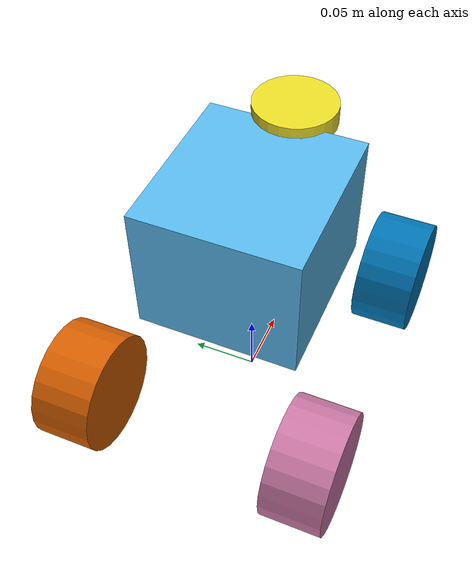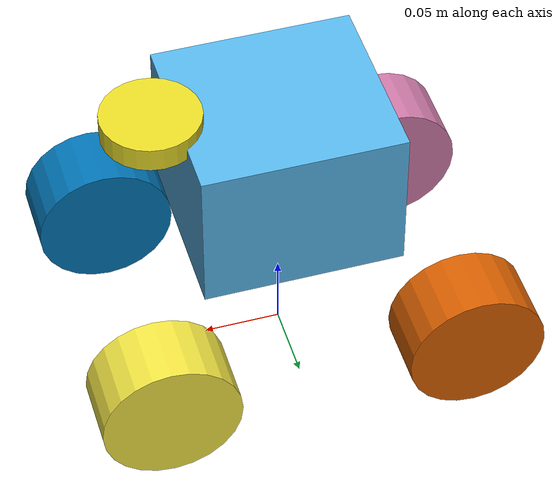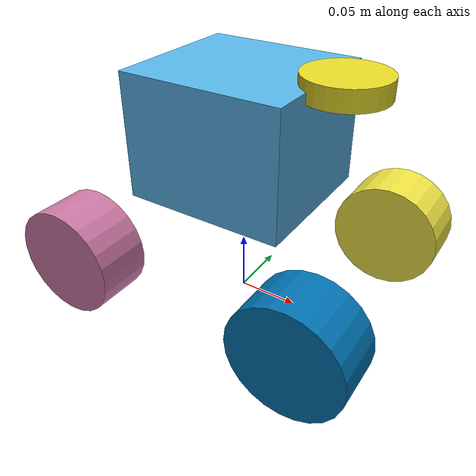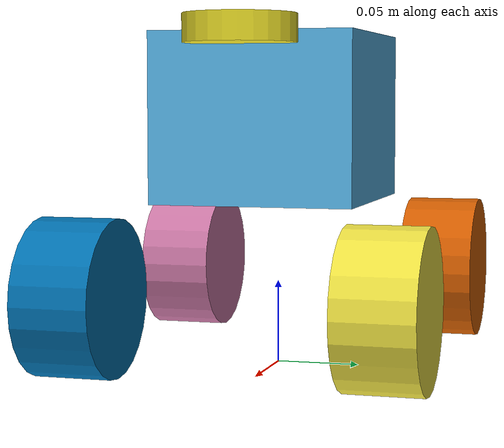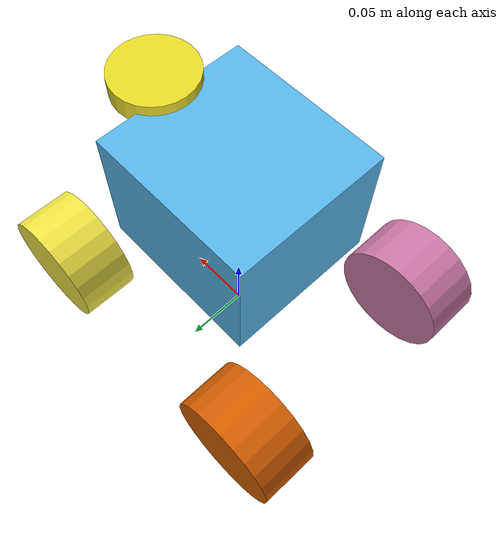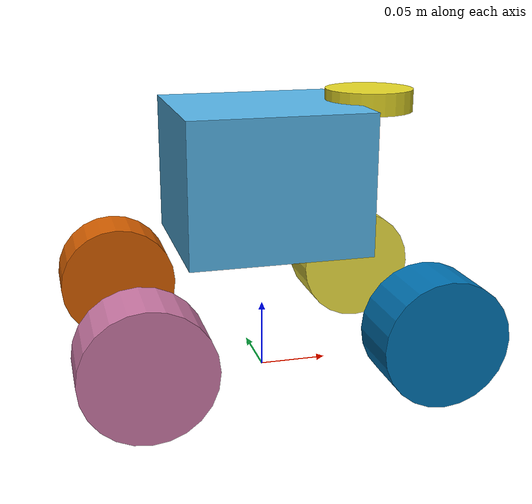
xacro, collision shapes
<?xml version="1.0"?>
<robot name="limo_four_diff" xmlns:xacro="http://ros.org/wiki/xacro">
    <xacro:include filename="$(find limo_simulation)/urdf/limo_xacro.xacro" />
    <xacro:include filename="$(find limo_simulation)/urdf/limo_four_diff.gazebo" />

    <!-- Variables -->
    <xacro:property name="M_PI" value="3.14159"/>

    <!-- Vehicle Geometries -->
    <xacro:property name="base_x_size" value="0.13" />
    <xacro:property name="base_y_size" value="0.12" />
    <xacro:property name="base_z_size" value="0.1" />

    <xacro:property name="wheelbase" value="0.2"/>
    <xacro:property name="track" value="0.13"/>
    <xacro:property name="wheel_vertical_offset" value="-0.10" />
    <xacro:property name="base_mass" value="2.1557"/>

    <xacro:property name="wheel_length" value="0.045" />
    <xacro:property name="wheel_radius" value="0.045" />

    <link name="base_footprint"/>

    <joint name="base_joint" type="fixed">
        <parent link="base_footprint"/>
        <child link="base_link"/>
        <origin xyz="0.0 0.0 0.15" rpy="0 0 0"/>
    </joint>
    <!-- Base link -->
    <link name="base_link">
        <visual>
            <origin xyz="0 0 -0.15" rpy="0 0 1.57" />
            <geometry>
                <mesh filename="file://$(find limo_simulation)/meshes/limo_base_decimated.dae" scale="1 1 1"/>
            </geometry>
        </visual>
        <collision>
            <!--origin xyz="0 0 -0.15" rpy="0 0 1.57" /-->
            <origin xyz="0 0 0" rpy="0 0 0" />
            <geometry>
                <box size="${base_x_size} ${base_y_size} ${base_z_size}"/>
            </geometry>
        </collision>
    </link>

    <link name="inertial_link">
        <inertial>
            <origin xyz="0.0 0.0 0.0" />
            <mass value="${base_mass}" />
            <inertia
                ixx="0.24" ixy="0" ixz="0"
                iyy="0.96" iyz="0"
                izz="0.96" />
        </inertial>
    </link>

    <joint name="inertial_joint" type="fixed">
        <origin xyz="0 0 0" rpy="0 0 0" />
        <parent link="base_link" />
        <child link="inertial_link" />
    </joint>

    <xacro:limo_wheel parent_prefix="base_link" wheel_prefix="front_left" reflect="1">
        <origin xyz="${wheelbase/2} ${track/2} ${wheel_vertical_offset}" rpy="0 0 0" />
    </xacro:limo_wheel>

    <xacro:limo_wheel parent_prefix="base_link" wheel_prefix="front_right" reflect="-1">
        <origin xyz="${wheelbase/2} ${-track/2} ${wheel_vertical_offset}" rpy="${M_PI} 0 0" />
    </xacro:limo_wheel>

    <xacro:limo_wheel parent_prefix="base_link" wheel_prefix="rear_left" reflect="1">
        <origin xyz="${-wheelbase/2} ${track/2} ${wheel_vertical_offset}" rpy="0 0 0" />
    </xacro:limo_wheel>

    <xacro:limo_wheel parent_prefix="base_link" wheel_prefix="rear_right" reflect="-1">
        <origin xyz="${-wheelbase/2} ${-track/2} ${wheel_vertical_offset}" rpy="${M_PI} 0 0" />
    </xacro:limo_wheel>

    <xacro:limo_laser parent_prefix="base_link" frame_prefix="laser">
        <origin xyz="0.08 0 0.05" rpy="0 0 0"/> <!-- Adjust position/orientation as needed -->
    </xacro:limo_laser>

</robot>

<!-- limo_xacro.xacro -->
<robot name="limo_xacro" xmlns:xacro="http://ros.org/wiki/xacro">
    <xacro:macro name="limo_wheel" params="parent_prefix wheel_prefix reflect *joint_pose">
        <link name="${wheel_prefix}_wheel_link">
            <inertial>
                <origin xyz="0 0 0" />
                <mass value="0.5" />
                <inertia ixx="0.01055" ixy="0" ixz="0" iyy="0.00075" iyz="0" izz="0.01055" />
            </inertial>
            <visual>
                <origin xyz="0 0 0" rpy="0 0 0" />
                <geometry>
                    <mesh filename="file://$(find limo_simulation)/meshes/limo_wheel.dae"/>
                </geometry>
            </visual>
            <collision>
              <origin xyz="0 ${wheel_length/2} 0" rpy="1.57 0 0" />
              <geometry>
                  <cylinder length="${wheel_length}" radius="${wheel_radius}" />
              </geometry>
            </collision>
        </link>

        <joint name="${wheel_prefix}_wheel" type="continuous">
            <parent link="${parent_prefix}"/>
            <child link="${wheel_prefix}_wheel_link"/>
            <xacro:insert_block name="joint_pose"/>
            <axis xyz="0 ${reflect*1} 0"/>
        </joint>

        <gazebo reference="${wheel_prefix}_wheel_link">
            <mu>0.2</mu>
            <mu2>0.2</mu2>
            <fdir1>0 ${reflect*1} 0</fdir1>
        </gazebo>
    </xacro:macro>

    <xacro:macro name="limo_laser" params="parent_prefix frame_prefix *joint_pose">
        <link name='${frame_prefix}_link'>
            <pose>0 0 0 0 0 0</pose>
            <inertial>
                <mass value="0.1"/>
                <origin xyz="0.0 0 0" rpy="0 0 0"/>
                <inertia
                    ixx="1e-6" ixy="0" ixz="0"
                    iyy="1e-6" iyz="0"
                    izz="1e-6"
                />
            </inertial>
            <visual name='laser_visual'>
                <origin xyz="0 0 0" rpy="0 0 0"/>
                <geometry>
                    <cylinder radius="0.02" length="0.01"/>
                </geometry>
                <material name='laser_material'>
                    <ambient>0.1 0.1 0.1 1</ambient>
                    <diffuse>0.1 0.1 0.2 1</diffuse>
                    <specular>0 0 0 0</specular>
                    <emissive>0 0 0 1</emissive>
                </material>
            </visual>
            <collision name='laser_collision'>
                <origin xyz="0 0 0" rpy="0 0 0"/>
                <geometry>
                    <cylinder radius="0.032" length="0.016"/>
                </geometry>
            </collision>
        </link>
        <joint type="fixed" name="laser_joint">
            <xacro:insert_block name="joint_pose"/>
            <child link="${frame_prefix}_link"/>
            <parent link="${parent_prefix}"/>
        </joint>
        <gazebo reference="${frame_prefix}_link">
            <material>Gazebo/Yellow</material>

            <sensor name="${frame_prefix}_laser" type="gpu_lidar">
                <topic>/world/empty_world/model/limobot/scan</topic>  <pose>0 0 0 0 0 0</pose>
                <update_rate>10</update_rate>
                <ray>
                    <scan>
                        <horizontal>
                            <samples>640</samples>
                            <resolution>1</resolution>
                            <min_angle>-1.396263</min_angle>
                            <max_angle>1.396263</max_angle>
                        </horizontal>
                        <vertical>
                            <samples>1</samples>
                            <resolution>0.01</resolution>
                            <min_angle>0</min_angle>
                            <max_angle>0</max_angle>
                        </vertical>
                    </scan>
                    <range>
                        <min>0.08</min>
                        <max>10.0</max>
                        <resolution>0.01</resolution>
                    </range>
                </ray>
                <always_on>1</always_on>
                <visualize>true</visualize>
            </sensor>
        </gazebo>
    </xacro:macro>

    <xacro:macro name="limo_depth_camera" params="parent_prefix frame_prefix *joint_pose">
        <link name='${frame_prefix}_link'>
            <pose>0 0 0 0 0 0</pose>
            <inertial>
                <mass value="0.1"/>
                <origin xyz="0.0 0 0" rpy="0 0 0"/>
                <inertia
                    ixx="1e-6" ixy="0" ixz="0"
                    iyy="1e-6" iyz="0"
                    izz="1e-6"
                />
            </inertial>
            <visual name='depth_camera_visual'>
                <origin xyz="0 0 0" rpy="0 0 0"/>
                <geometry>
                    <box size="0.02 0.06 0.015"/>
                </geometry>
                <material name='depth_camera_material'>
                    <ambient>0.1 0.1 0.1 1</ambient>
                    <diffuse>0.1 0.1 0.2 1</diffuse>
                    <specular>0 0 0 0</specular>
                    <emissive>0 0 0 1</emissive>
                </material>
            </visual>
            <collision name='depth_camera_collision'>
                <origin xyz="0 0 0" rpy="0 0 0"/>
                <geometry>
                    <box size="0.02 0.06 0.015"/>
                </geometry>
            </collision>
        </link>

        <joint type="fixed" name="depth_camera_joint">
            <xacro:insert_block name="joint_pose"/>
            <child link="${frame_prefix}_link"/>
            <parent link="${parent_prefix}"/>
        </joint>
        <link name="depth_link"></link>

        <joint name="${frame_prefix}_to_camera_joint" type="fixed">
            <origin xyz="0 0 0" rpy="${-M_PI/2} 0 ${-M_PI/2} "/>
            <parent link="${frame_prefix}_link"/>
            <child link="depth_link"/>
          </joint>

        <gazebo reference="${frame_prefix}_link">
            <material>Gazebo/Yellow</material>
        </gazebo>
    </xacro:macro>

    <xacro:macro name="limo_imu" params="parent_prefix frame_prefix  *joint_pose">
        <link name='${frame_prefix}_link'>
            <pose>0 0 0 0 0 0</pose>
            <inertial>
                <mass value="0.01"/>
                <origin xyz="0.0 0 0" rpy="0 0 0"/>
                <inertia
                    ixx="1e-7" ixy="0" ixz="0"
                    iyy="1e-7" iyz="0"
                    izz="1e-7"
                />
            </inertial>
            <visual name='imu_visual'>
                <origin xyz="0 0 0" rpy="0 0 0"/>
                <geometry>
                    <box size="0.001 0.001 0.001"/>
                </geometry>
                <material name='imu_material'>
                    <ambient>0.1 0.1 0.1 1</ambient>
                    <diffuse>0.1 0.1 0.2 1</diffuse>
                    <specular>0 0 0 0</specular>
                    <emissive>0 0 0 1</emissive>
                </material>
            </visual>
            <collision name='imu_collision'>
                <origin xyz="0 0 0" rpy="0 0 0"/>
                <geometry>
                    <box size="0.001 0.001 0.001"/>
                </geometry>
            </collision>
        </link>
        <joint type="fixed" name="imu_joint">
            <xacro:insert_block name="joint_pose"/>
            <child link="${frame_prefix}_link"/>
            <parent link="${parent_prefix}"/>
        </joint>
        <gazebo reference="${frame_prefix}_link">
            <material>Gazebo/Yellow</material>
        </gazebo>
    </xacro:macro>
</robot>
